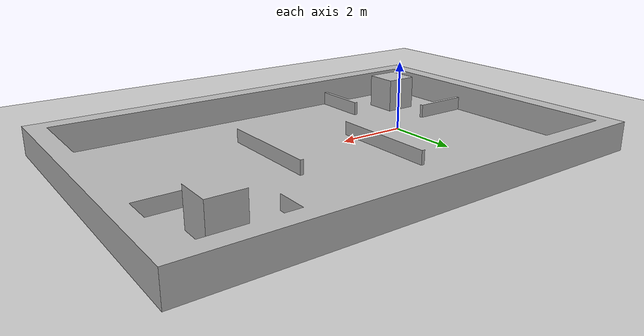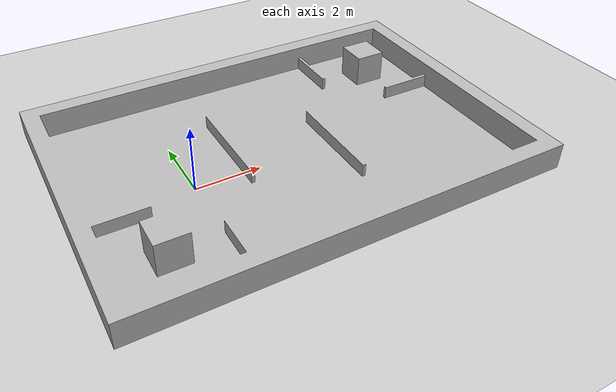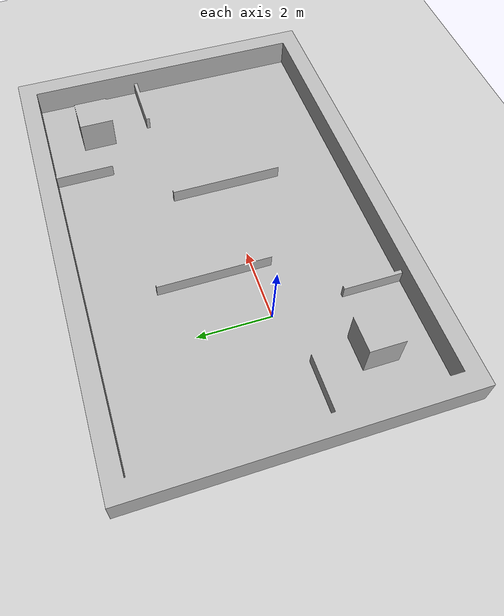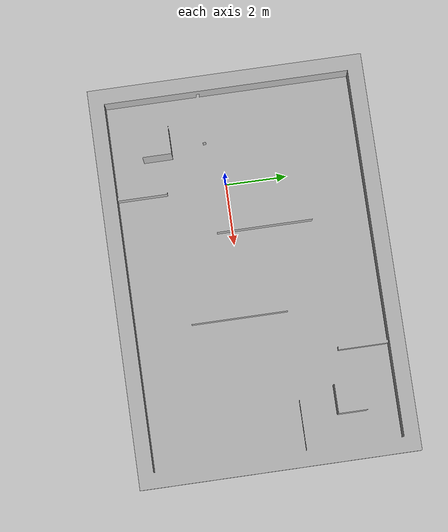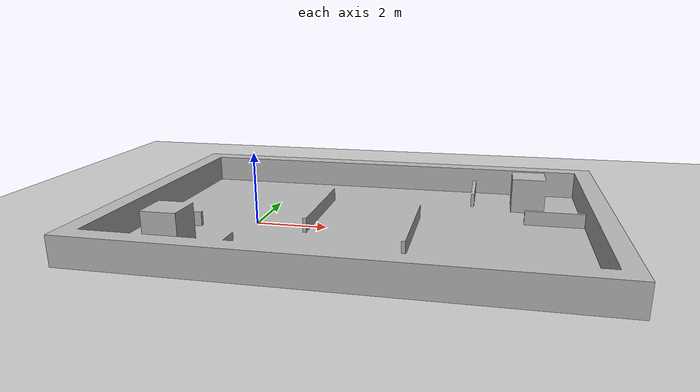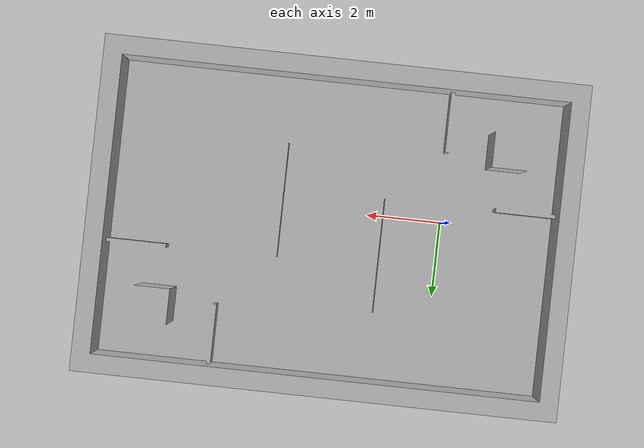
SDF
<?xml version="1.0"?>
<sdf version="1.4">
  <world name="default">
    <include>
      <uri>model://sun</uri>
    </include>
    <include>
      <uri>model://ground_plane</uri>
    </include>
    <model name="rmul">
      <pose>2.95 0.45 0 0 0 0</pose>
      <static>true</static>
      <link name="up">
        <collision name='collision1'>
      	  <geometry>
            <mesh><uri>/home/rm/ros2_ws/install/rm_description/share/rm_description/world/rmul2023.dae</uri></mesh>
          </geometry>
      	</collision>

        <visual name="visual">
          <geometry>
            <mesh><uri>/home/rm/ros2_ws/install/rm_description/share/rm_description/world/rmul2023.dae</uri></mesh>
          </geometry>
        </visual>

      </link>
    </model>
  </world>
</sdf>
